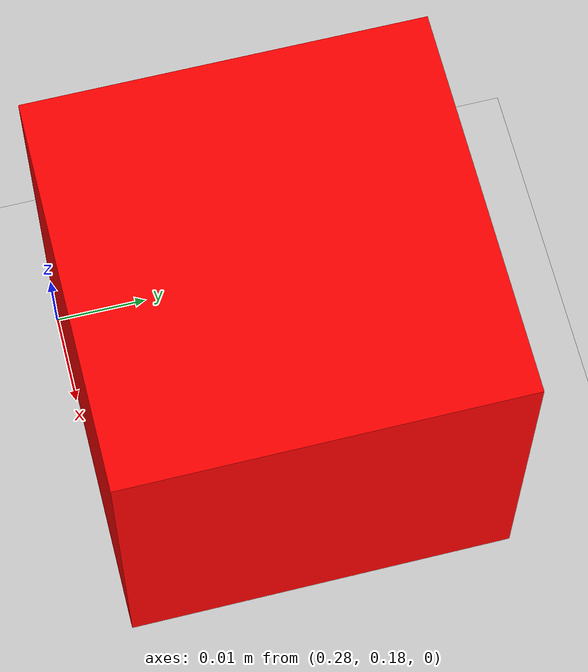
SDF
<?xml version="1.0" ?>
<sdf version="1.6">
  <world name="default">
    <light type="directional" name="sun">
      <cast_shadows>true</cast_shadows>
      <pose>0 0 10 0 0 0</pose>
      <diffuse>0.8 0.8 0.8 1</diffuse>
      <specular>0.2 0.2 0.2 1</specular>
      <direction>-0.5 0.1 -0.9</direction>
    </light>

    <model name="ground_plane">
      <static>true</static>
      <link name="link">
        <collision name="collision">
          <geometry><plane><normal>0 0 1</normal></plane></geometry>
        </collision>
        <visual name="visual">
          <geometry><plane><normal>0 0 1</normal><size>100 100</size></plane></geometry>
          <material><ambient>0.8 0.8 0.8 1</ambient><diffuse>0.8 0.8 0.8 1</diffuse></material>
        </visual>
      </link>
    </model>

    <model name="box1">
        <pose>0.3 0.2 0.03 0 0 0</pose>
        <link name="link">
            <inertial><mass>0.2</mass><inertia><ixx>0.0001</ixx><ixy>0</ixy><ixz>0</ixz><iyy>0.0001</iyy><iyz>0</iyz><izz>0.0001</izz></inertia></inertial>
            <visual name="visual"><geometry><box><size>0.04 0.04 0.04</size></box></geometry><material><ambient>1 0 0 1</ambient></material></visual>
            <collision name="collision"><geometry><box><size>0.04 0.04 0.04</size></box></geometry></collision>
        </link>
    </model>

    <plugin name="gazebo_link_attacher" filename="libgazebo_link_attacher.so"/>
  </world>
</sdf>
